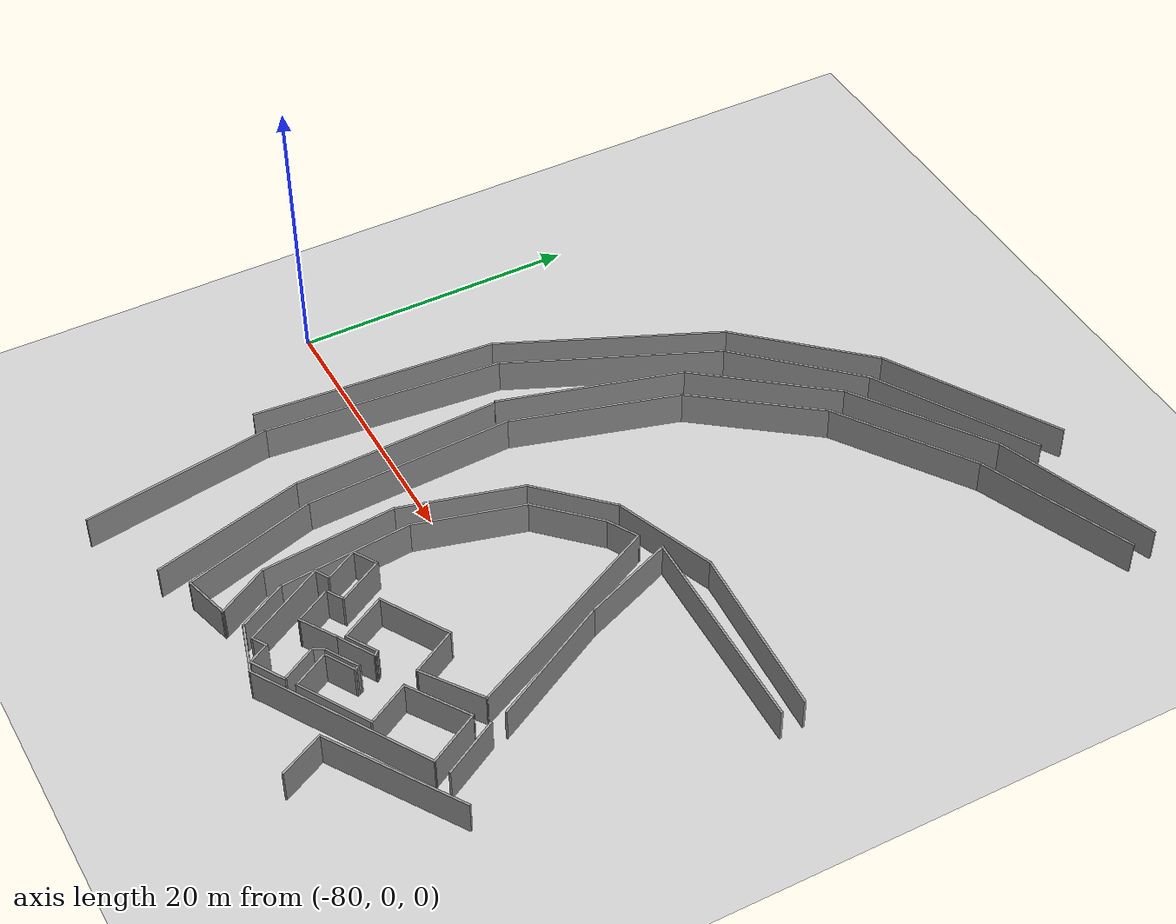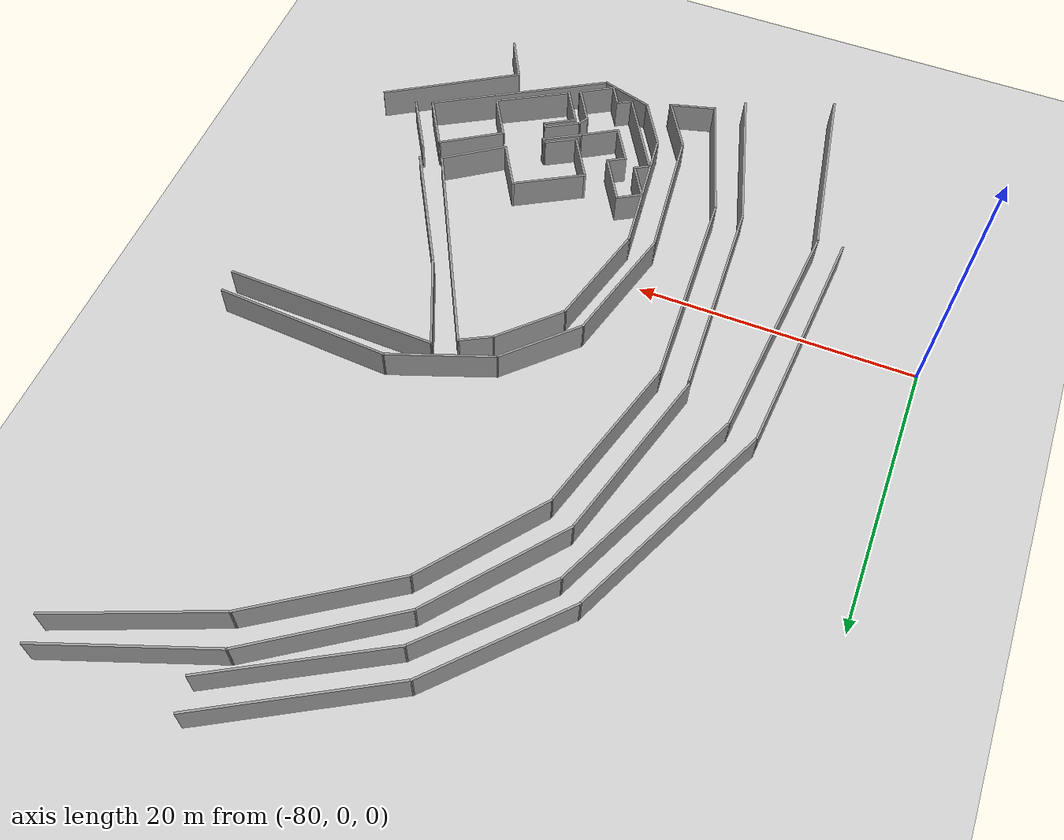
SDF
<sdf version="1.7">
 <world name="default">
  <model name="ground_plane">
   <static>1</static>
   <link name="link">
    <collision name="collision">
     <geometry><plane><normal>0 0 1</normal><size>100 100</size></plane></geometry>
     <surface><friction><ode><mu>100</mu><mu2>50</mu2></ode></friction></surface>
    </collision>
    <visual name="visual">
     <cast_shadows>0</cast_shadows>
     <geometry><plane><normal>0 0 1</normal><size>100 100</size></plane></geometry>
     <material>
      <script><uri>file://media/materials/scripts/gazebo.material</uri><name>Gazebo/Grey</name></script>
     </material>
    </visual>
   </link>
  </model>
  <model name="final_max_v1">
   <pose>-2.52311 0.689104 0 0 -0 0</pose>
   <link name="Wall_101">
    <collision name="Wall_101_Collision">
     <geometry><box><size>17.4551 0.15 2.5</size></box></geometry>
     <pose>0 0 1.25 0 -0 0</pose>
    </collision>
    <visual name="Wall_101_Visual">
     <pose>0 0 1.25 0 -0 0</pose>
     <geometry><box><size>17.4551 0.15 2.5</size></box></geometry>
     <material>
      <script><uri>file://media/materials/scripts/gazebo.material</uri><name>Gazebo/Grey</name></script>
      <ambient>1 1 1 1</ambient>
     </material>
     <meta><layer>0</layer></meta>
    </visual>
    <pose>-69.3611 0.906246 0 0 -0 1.49097</pose>
   </link>
   <link name="Wall_102">
    <collision name="Wall_102_Collision">
     <geometry><box><size>16.5473 0.15 2.5</size></box></geometry>
     <pose>0 0 1.25 0 -0 0</pose>
    </collision>
    <visual name="Wall_102_Visual">
     <pose>0 0 1.25 0 -0 0</pose>
     <geometry><box><size>16.5473 0.15 2.5</size></box></geometry>
     <material>
      <script><uri>file://media/materials/scripts/gazebo.material</uri><name>Gazebo/Grey</name></script>
      <ambient>1 1 1 1</ambient>
     </material>
     <meta><layer>0</layer></meta>
    </visual>
    <pose>-65.3062 17.0076 0 0 -0 1.14788</pose>
   </link>
   <link name="Wall_103">
    <collision name="Wall_103_Collision">
     <geometry><box><size>11.1751 0.15 2.5</size></box></geometry>
     <pose>0 0 1.25 0 -0 0</pose>
    </collision>
    <visual name="Wall_103_Visual">
     <pose>0 0 1.25 0 -0 0</pose>
     <geometry><box><size>11.1751 0.15 2.5</size></box></geometry>
     <material>
      <script><uri>file://media/materials/scripts/gazebo.material</uri><name>Gazebo/Grey</name></script>
      <ambient>1 1 1 1</ambient>
     </material>
     <meta><layer>0</layer></meta>
    </visual>
    <pose>-58.1953 28.5281 0 0 -0 0.823656</pose>
   </link>
   <link name="Wall_104">
    <collision name="Wall_104_Collision">
     <geometry><box><size>13.75 0.15 2.5</size></box></geometry>
     <pose>0 0 1.25 0 -0 0</pose>
    </collision>
    <visual name="Wall_104_Visual">
     <pose>0 0 1.25 0 -0 0</pose>
     <geometry><box><size>13.75 0.15 2.5</size></box></geometry>
     <material>
      <script><uri>file://media/materials/scripts/gazebo.material</uri><name>Gazebo/Grey</name></script>
      <ambient>1 1 1 1</ambient>
     </material>
     <meta><layer>0</layer></meta>
    </visual>
    <pose>-48.5603 35.9723 0 0 -0 0.523599</pose>
   </link>
   <link name="Wall_143">
    <collision name="Wall_143_Collision">
     <geometry><box><size>13.7057 0.15 2.5</size></box></geometry>
     <pose>0 0 1.25 0 -0 0</pose>
    </collision>
    <visual name="Wall_143_Visual">
     <pose>0 0 1.25 0 -0 0</pose>
     <geometry><box><size>13.7057 0.15 2.5</size></box></geometry>
     <material>
      <script><uri>file://media/materials/scripts/gazebo.material</uri><name>Gazebo/Grey</name></script>
      <ambient>1 1 1 1</ambient>
     </material>
     <meta><layer>0</layer></meta>
    </visual>
    <pose>-67.1763 -14.3505 0 0 -0 1.72872</pose>
   </link>
   <link name="Wall_145">
    <collision name="Wall_145_Collision">
     <geometry><box><size>16.9669 0.15 2.5</size></box></geometry>
     <pose>0 0 1.25 0 -0 0</pose>
    </collision>
    <visual name="Wall_145_Visual">
     <pose>0 0 1.25 0 -0 0</pose>
     <geometry><box><size>16.9669 0.15 2.5</size></box></geometry>
     <material>
      <script><uri>file://media/materials/scripts/gazebo.material</uri><name>Gazebo/Grey</name></script>
      <ambient>1 1 1 1</ambient>
     </material>
     <meta><layer>0</layer></meta>
    </visual>
    <pose>-67.4602 0.714958 0 0 -0 1.47766</pose>
   </link>
   <link name="Wall_147">
    <collision name="Wall_147_Collision">
     <geometry><box><size>15.7591 0.15 2.5</size></box></geometry>
     <pose>0 0 1.25 0 -0 0</pose>
    </collision>
    <visual name="Wall_147_Visual">
     <pose>0 0 1.25 0 -0 0</pose>
     <geometry><box><size>15.7591 0.15 2.5</size></box></geometry>
     <material>
      <script><uri>file://media/materials/scripts/gazebo.material</uri><name>Gazebo/Grey</name></script>
      <ambient>1 1 1 1</ambient>
     </material>
     <meta><layer>0</layer></meta>
    </visual>
    <pose>-63.5042 16.217 0 0 -0 1.15197</pose>
   </link>
   <link name="Wall_149">
    <collision name="Wall_149_Collision">
     <geometry><box><size>10.4318 0.15 2.5</size></box></geometry>
     <pose>0 0 1.25 0 -0 0</pose>
    </collision>
    <visual name="Wall_149_Visual">
     <pose>0 0 1.25 0 -0 0</pose>
     <geometry><box><size>10.4318 0.15 2.5</size></box></geometry>
     <material>
      <script><uri>file://media/materials/scripts/gazebo.material</uri><name>Gazebo/Grey</name></script>
      <ambient>1 1 1 1</ambient>
     </material>
     <meta><layer>0</layer></meta>
    </visual>
    <pose>-56.7882 27.073 0 0 -0 0.810709</pose>
   </link>
   <link name="Wall_151">
    <collision name="Wall_151_Collision">
     <geometry><box><size>12.8849 0.15 2.5</size></box></geometry>
     <pose>0 0 1.25 0 -0 0</pose>
    </collision>
    <visual name="Wall_151_Visual">
     <pose>0 0 1.25 0 -0 0</pose>
     <geometry><box><size>12.8849 0.15 2.5</size></box></geometry>
     <material>
      <script><uri>file://media/materials/scripts/gazebo.material</uri><name>Gazebo/Grey</name></script>
      <ambient>1 1 1 1</ambient>
     </material>
     <meta><layer>0</layer></meta>
    </visual>
    <pose>-47.7262 33.973 0 0 -0 0.521834</pose>
   </link>
   <link name="Wall_177">
    <collision name="Wall_177_Collision">
     <geometry><box><size>11.25 0.15 2.5</size></box></geometry>
     <pose>0 0 1.25 0 -0 0</pose>
    </collision>
    <visual name="Wall_177_Visual">
     <pose>0 0 1.25 0 -0 0</pose>
     <geometry><box><size>11.25 0.15 2.5</size></box></geometry>
     <material>
      <script><uri>file://media/materials/scripts/gazebo.material</uri><name>Gazebo/Grey</name></script>
      <ambient>1 1 1 1</ambient>
     </material>
     <meta><layer>0</layer></meta>
    </visual>
    <pose>-61.219 -13.2274 0 0 -0 1.8326</pose>
   </link>
   <link name="Wall_178">
    <collision name="Wall_178_Collision">
     <geometry><box><size>14.9254 0.15 2.5</size></box></geometry>
     <pose>0 0 1.25 0 -0 0</pose>
    </collision>
    <visual name="Wall_178_Visual">
     <pose>0 0 1.25 0 -0 0</pose>
     <geometry><box><size>14.9254 0.15 2.5</size></box></geometry>
     <material>
      <script><uri>file://media/materials/scripts/gazebo.material</uri><name>Gazebo/Grey</name></script>
      <ambient>1 1 1 1</ambient>
     </material>
     <meta><layer>0</layer></meta>
    </visual>
    <pose>-62.967 -0.485436 0 0 -0 1.61298</pose>
   </link>
   <link name="Wall_180">
    <collision name="Wall_180_Collision">
     <geometry><box><size>13.3433 0.15 2.5</size></box></geometry>
     <pose>0 0 1.25 0 -0 0</pose>
    </collision>
    <visual name="Wall_180_Visual">
     <pose>0 0 1.25 0 -0 0</pose>
     <geometry><box><size>13.3433 0.15 2.5</size></box></geometry>
     <material>
      <script><uri>file://media/materials/scripts/gazebo.material</uri><name>Gazebo/Grey</name></script>
      <ambient>1 1 1 1</ambient>
     </material>
     <meta><layer>0</layer></meta>
    </visual>
    <pose>-61.5766 13.5197 0 0 -0 1.29537</pose>
   </link>
   <link name="Wall_181">
    <collision name="Wall_181_Collision">
     <geometry><box><size>11.2134 0.15 2.5</size></box></geometry>
     <pose>0 0 1.25 0 -0 0</pose>
    </collision>
    <visual name="Wall_181_Visual">
     <pose>0 0 1.25 0 -0 0</pose>
     <geometry><box><size>11.2134 0.15 2.5</size></box></geometry>
     <material>
      <script><uri>file://media/materials/scripts/gazebo.material</uri><name>Gazebo/Grey</name></script>
      <ambient>1 1 1 1</ambient>
     </material>
     <meta><layer>0</layer></meta>
    </visual>
    <pose>-56.3326 24.1917 0 0 -0 0.897354</pose>
   </link>
   <link name="Wall_183">
    <collision name="Wall_183_Collision">
     <geometry><box><size>11.4034 0.15 2.5</size></box></geometry>
     <pose>0 0 1.25 0 -0 0</pose>
    </collision>
    <visual name="Wall_183_Visual">
     <pose>0 0 1.25 0 -0 0</pose>
     <geometry><box><size>11.4034 0.15 2.5</size></box></geometry>
     <material>
      <script><uri>file://media/materials/scripts/gazebo.material</uri><name>Gazebo/Grey</name></script>
      <ambient>1 1 1 1</ambient>
     </material>
     <meta><layer>0</layer></meta>
    </visual>
    <pose>-48.2366 31.6897 0 0 -0 0.59934</pose>
   </link>
   <link name="Wall_185">
    <collision name="Wall_185_Collision">
     <geometry><box><size>12.286 0.15 2.5</size></box></geometry>
     <pose>0 0 1.25 0 -0 0</pose>
    </collision>
    <visual name="Wall_185_Visual">
     <pose>0 0 1.25 0 -0 0</pose>
     <geometry><box><size>12.286 0.15 2.5</size></box></geometry>
     <material>
      <script><uri>file://media/materials/scripts/gazebo.material</uri><name>Gazebo/Grey</name></script>
      <ambient>1 1 1 1</ambient>
     </material>
     <meta><layer>0</layer></meta>
    </visual>
    <pose>-37.8866 36.9337 0 0 -0 0.348123</pose>
   </link>
   <link name="Wall_195">
    <collision name="Wall_195_Collision">
     <geometry><box><size>9.95782 0.15 2.5</size></box></geometry>
     <pose>0 0 1.25 0 -0 0</pose>
    </collision>
    <visual name="Wall_195_Visual">
     <pose>0 0 1.25 0 -0 0</pose>
     <geometry><box><size>9.95782 0.15 2.5</size></box></geometry>
     <material>
      <script><uri>file://media/materials/scripts/gazebo.material</uri><name>Gazebo/Grey</name></script>
      <ambient>1 1 1 1</ambient>
     </material>
     <meta><layer>0</layer></meta>
    </visual>
    <pose>-59.1949 -12.5474 0 0 -0 1.86585</pose>
   </link>
   <link name="Wall_196">
    <collision name="Wall_196_Collision">
     <geometry><box><size>15.018 0.15 2.5</size></box></geometry>
     <pose>0 0 1.25 0 -0 0</pose>
    </collision>
    <visual name="Wall_196_Visual">
     <pose>0 0 1.25 0 -0 0</pose>
     <geometry><box><size>15.018 0.15 2.5</size></box></geometry>
     <material>
      <script><uri>file://media/materials/scripts/gazebo.material</uri><name>Gazebo/Grey</name></script>
      <ambient>1 1 1 1</ambient>
     </material>
     <meta><layer>0</layer></meta>
    </visual>
    <pose>-60.9452 -0.428503 0 0 -0 1.61444</pose>
   </link>
   <link name="Wall_198">
    <collision name="Wall_198_Collision">
     <geometry><box><size>12.2392 0.15 2.5</size></box></geometry>
     <pose>0 0 1.25 0 -0 0</pose>
    </collision>
    <visual name="Wall_198_Visual">
     <pose>0 0 1.25 0 -0 0</pose>
     <geometry><box><size>12.2392 0.15 2.5</size></box></geometry>
     <material>
      <script><uri>file://media/materials/scripts/gazebo.material</uri><name>Gazebo/Grey</name></script>
      <ambient>1 1 1 1</ambient>
     </material>
     <meta><layer>0</layer></meta>
    </visual>
    <pose>-59.5904 12.8051 0 0 -0 1.28932</pose>
   </link>
   <link name="Wall_200">
    <collision name="Wall_200_Collision">
     <geometry><box><size>10.2252 0.15 2.5</size></box></geometry>
     <pose>0 0 1.25 0 -0 0</pose>
    </collision>
    <visual name="Wall_200_Visual">
     <pose>0 0 1.25 0 -0 0</pose>
     <geometry><box><size>10.2252 0.15 2.5</size></box></geometry>
     <material>
      <script><uri>file://media/materials/scripts/gazebo.material</uri><name>Gazebo/Grey</name></script>
      <ambient>1 1 1 1</ambient>
     </material>
     <meta><layer>0</layer></meta>
    </visual>
    <pose>-54.8331 22.5996 0 0 -0 0.913407</pose>
   </link>
   <link name="Wall_203">
    <collision name="Wall_203_Collision">
     <geometry><box><size>11.085 0.15 2.5</size></box></geometry>
     <pose>0 0 1.25 0 -0 0</pose>
    </collision>
    <visual name="Wall_203_Visual">
     <pose>0 0 1.25 0 -0 0</pose>
     <geometry><box><size>11.085 0.15 2.5</size></box></geometry>
     <material>
      <script><uri>file://media/materials/scripts/gazebo.material</uri><name>Gazebo/Grey</name></script>
      <ambient>1 1 1 1</ambient>
     </material>
     <meta><layer>0</layer></meta>
    </visual>
    <pose>-47.218 29.6386 0 0 -0 0.592066</pose>
   </link>
   <link name="Wall_205">
    <collision name="Wall_205_Collision">
     <geometry><box><size>11.7846 0.15 2.5</size></box></geometry>
     <pose>0 0 1.25 0 -0 0</pose>
    </collision>
    <visual name="Wall_205_Visual">
     <pose>0 0 1.25 0 -0 0</pose>
     <geometry><box><size>11.7846 0.15 2.5</size></box></geometry>
     <material>
      <script><uri>file://media/materials/scripts/gazebo.material</uri><name>Gazebo/Grey</name></script>
      <ambient>1 1 1 1</ambient>
     </material>
     <meta><layer>0</layer></meta>
    </visual>
    <pose>-37.2991 34.8978 0 0 -0 0.389317</pose>
   </link>
   <link name="Wall_427">
    <collision name="Wall_427_Collision">
     <geometry><box><size>9.82538 0.15 2.5</size></box></geometry>
     <pose>0 0 1.25 0 -0 0</pose>
    </collision>
    <visual name="Wall_427_Visual">
     <pose>0 0 1.25 0 -0 0</pose>
     <geometry><box><size>9.82538 0.15 2.5</size></box></geometry>
     <material>
      <script><uri>file://media/materials/scripts/gazebo.material</uri><name>Gazebo/Grey</name></script>
      <ambient>1 1 1 1</ambient>
     </material>
     <meta><layer>0</layer></meta>
    </visual>
    <pose>-41.1932 -0.194311 0 0 -0 2.07574</pose>
   </link>
   <link name="Wall_428">
    <collision name="Wall_428_Collision">
     <geometry><box><size>7.12478 0.15 2.5</size></box></geometry>
     <pose>0 0 1.25 0 -0 0</pose>
    </collision>
    <visual name="Wall_428_Visual">
     <pose>0 0 1.25 0 -0 0</pose>
     <geometry><box><size>7.12478 0.15 2.5</size></box></geometry>
     <material>
      <script><uri>file://media/materials/scripts/gazebo.material</uri><name>Gazebo/Grey</name></script>
      <ambient>1 1 1 1</ambient>
     </material>
     <meta><layer>0</layer></meta>
    </visual>
    <pose>-44.8559 7.26656 0 0 -0 1.95975</pose>
   </link>
   <link name="Wall_429">
    <collision name="Wall_429_Collision">
     <geometry><box><size>15.4372 0.15 2.5</size></box></geometry>
     <pose>0 0 1.25 0 -0 0</pose>
    </collision>
    <visual name="Wall_429_Visual">
     <pose>0 0 1.25 0 -0 0</pose>
     <geometry><box><size>15.4372 0.15 2.5</size></box></geometry>
     <material>
      <script><uri>file://media/materials/scripts/gazebo.material</uri><name>Gazebo/Grey</name></script>
      <ambient>1 1 1 1</ambient>
     </material>
     <meta><layer>0</layer></meta>
    </visual>
    <pose>-38.5372 10.3021 0 0 -0 -0.025039</pose>
   </link>
   <link name="Wall_465">
    <collision name="Wall_465_Collision">
     <geometry><box><size>4.5 0.15 2.5</size></box></geometry>
     <pose>0 0 1.25 0 -0 0</pose>
    </collision>
    <visual name="Wall_465_Visual">
     <pose>0 0 1.25 0 -0 0</pose>
     <geometry><box><size>4.5 0.15 2.5</size></box></geometry>
     <material>
      <script><uri>file://media/materials/scripts/gazebo.material</uri><name>Gazebo/Grey</name></script>
      <ambient>1 1 1 1</ambient>
     </material>
     <meta><layer>0</layer></meta>
    </visual>
    <pose>-37.4503 -7.52646 0 0 -0 -1.0472</pose>
   </link>
   <link name="Wall_469">
    <collision name="Wall_469_Collision">
     <geometry><box><size>4.25 0.15 2.5</size></box></geometry>
     <pose>0 0 1.25 0 -0 0</pose>
    </collision>
    <visual name="Wall_469_Visual">
     <pose>0 0 1.25 0 -0 0</pose>
     <geometry><box><size>4.25 0.15 2.5</size></box></geometry>
     <material>
      <script><uri>file://media/materials/scripts/gazebo.material</uri><name>Gazebo/Grey</name></script>
      <ambient>1 1 1 1</ambient>
     </material>
     <meta><layer>0</layer></meta>
    </visual>
    <pose>-38.5562 -8.09874 0 0 -0 -1.0472</pose>
   </link>
   <link name="Wall_471">
    <collision name="Wall_471_Collision">
     <geometry><box><size>3.5 0.15 2.5</size></box></geometry>
     <pose>0 0 1.25 0 -0 0</pose>
    </collision>
    <visual name="Wall_471_Visual">
     <pose>0 0 1.25 0 -0 0</pose>
     <geometry><box><size>3.5 0.15 2.5</size></box></geometry>
     <material>
      <script><uri>file://media/materials/scripts/gazebo.material</uri><name>Gazebo/Grey</name></script>
      <ambient>1 1 1 1</ambient>
     </material>
     <meta><layer>0</layer></meta>
    </visual>
    <pose>-56.1509 -16.8059 0 0 -0 0.261799</pose>
   </link>
   <link name="Wall_585">
    <collision name="Wall_585_Collision">
     <geometry><box><size>3.57821 0.15 2.5</size></box></geometry>
     <pose>0 0 1.25 0 -0 0</pose>
    </collision>
    <visual name="Wall_585_Visual">
     <pose>0 0 1.25 0 -0 0</pose>
     <geometry><box><size>3.57821 0.15 2.5</size></box></geometry>
     <material>
      <script><uri>file://media/materials/scripts/gazebo.material</uri><name>Gazebo/Grey</name></script>
      <ambient>1 1 1 1</ambient>
     </material>
     <meta><layer>0</layer></meta>
    </visual>
    <pose>-41.7856 -16.5735 0 0 -0 2.04971</pose>
   </link>
   <link name="Wall_586">
    <collision name="Wall_586_Collision">
     <geometry><box><size>10.6377 0.15 2.5</size></box></geometry>
     <pose>0 0 1.25 0 -0 0</pose>
    </collision>
    <visual name="Wall_586_Visual">
     <pose>0 0 1.25 0 -0 0</pose>
     <geometry><box><size>10.6377 0.15 2.5</size></box></geometry>
     <material>
      <script><uri>file://media/materials/scripts/gazebo.material</uri><name>Gazebo/Grey</name></script>
      <ambient>1 1 1 1</ambient>
     </material>
     <meta><layer>0</layer></meta>
    </visual>
    <pose>-38.1287 -12.273 0 0 -0 0.558599</pose>
   </link>
   <link name="Wall_622">
    <collision name="Wall_622_Collision">
     <geometry><box><size>4.25 0.15 2.5</size></box></geometry>
     <pose>0 0 1.25 0 -0 0</pose>
    </collision>
    <visual name="Wall_622_Visual">
     <pose>0 0 1.25 0 -0 0</pose>
     <geometry><box><size>4.25 0.15 2.5</size></box></geometry>
     <material>
      <script><uri>file://media/materials/scripts/gazebo.material</uri><name>Gazebo/Grey</name></script>
      <ambient>1 1 1 1</ambient>
     </material>
     <meta><layer>0</layer></meta>
    </visual>
    <pose>-55.558 -14.597 0 0 -0 2.0944</pose>
   </link>
   <link name="Wall_623">
    <collision name="Wall_623_Collision">
     <geometry><box><size>9.84854 0.15 2.5</size></box></geometry>
     <pose>0 0 1.25 0 -0 0</pose>
    </collision>
    <visual name="Wall_623_Visual">
     <pose>0 0 1.25 0 -0 0</pose>
     <geometry><box><size>9.84854 0.15 2.5</size></box></geometry>
     <material>
      <script><uri>file://media/materials/scripts/gazebo.material</uri><name>Gazebo/Grey</name></script>
      <ambient>1 1 1 1</ambient>
     </material>
     <meta><layer>0</layer></meta>
    </visual>
    <pose>-57.0579 -7.99572 0 0 -0 1.66889</pose>
   </link>
   <link name="Wall_625">
    <collision name="Wall_625_Collision">
     <geometry><box><size>9 0.15 2.5</size></box></geometry>
     <pose>0 0 1.25 0 -0 0</pose>
    </collision>
    <visual name="Wall_625_Visual">
     <pose>0 0 1.25 0 -0 0</pose>
     <geometry><box><size>9 0.15 2.5</size></box></geometry>
     <material>
      <script><uri>file://media/materials/scripts/gazebo.material</uri><name>Gazebo/Grey</name></script>
      <ambient>1 1 1 1</ambient>
     </material>
     <meta><layer>0</layer></meta>
    </visual>
    <pose>-56.3875 1.10446 0 0 -0 1.309</pose>
   </link>
   <link name="Wall_626">
    <collision name="Wall_626_Collision">
     <geometry><box><size>6.5 0.15 2.5</size></box></geometry>
     <pose>0 0 1.25 0 -0 0</pose>
    </collision>
    <visual name="Wall_626_Visual">
     <pose>0 0 1.25 0 -0 0</pose>
     <geometry><box><size>6.5 0.15 2.5</size></box></geometry>
     <material>
      <script><uri>file://media/materials/scripts/gazebo.material</uri><name>Gazebo/Grey</name></script>
      <ambient>1 1 1 1</ambient>
     </material>
     <meta><layer>0</layer></meta>
    </visual>
    <pose>-52.9972 7.62375 0 0 -0 0.785398</pose>
   </link>
   <link name="Wall_630">
    <collision name="Wall_630_Collision">
     <geometry><box><size>7.83382 0.15 2.5</size></box></geometry>
     <pose>0 0 1.25 0 -0 0</pose>
    </collision>
    <visual name="Wall_630_Visual">
     <pose>0 0 1.25 0 -0 0</pose>
     <geometry><box><size>7.83382 0.15 2.5</size></box></geometry>
     <material>
      <script><uri>file://media/materials/scripts/gazebo.material</uri><name>Gazebo/Grey</name></script>
      <ambient>1 1 1 1</ambient>
     </material>
     <meta><layer>0</layer></meta>
    </visual>
    <pose>-47.1431 11.186 0 0 -0 0.349939</pose>
   </link>
   <link name="Wall_631">
    <collision name="Wall_631_Collision">
     <geometry><box><size>12.7173 0.15 2.5</size></box></geometry>
     <pose>0 0 1.25 0 -0 0</pose>
    </collision>
    <visual name="Wall_631_Visual">
     <pose>0 0 1.25 0 -0 0</pose>
     <geometry><box><size>12.7173 0.15 2.5</size></box></geometry>
     <material>
      <script><uri>file://media/materials/scripts/gazebo.material</uri><name>Gazebo/Grey</name></script>
      <ambient>1 1 1 1</ambient>
     </material>
     <meta><layer>0</layer></meta>
    </visual>
    <pose>-37.2604 12.1472 0 0 -0 -0.056677</pose>
   </link>
   <link name="Wall_633">
    <collision name="Wall_633_Collision">
     <geometry><box><size>4 0.15 2.5</size></box></geometry>
     <pose>0 0 1.25 0 -0 0</pose>
    </collision>
    <visual name="Wall_633_Visual">
     <pose>0 0 1.25 0 -0 0</pose>
     <geometry><box><size>4 0.15 2.5</size></box></geometry>
     <material>
      <script><uri>file://media/materials/scripts/gazebo.material</uri><name>Gazebo/Grey</name></script>
      <ambient>1 1 1 1</ambient>
     </material>
     <meta><layer>0</layer></meta>
    </visual>
    <pose>-53.8105 -14.0024 0 0 -0 2.0944</pose>
   </link>
   <link name="Wall_634">
    <collision name="Wall_634_Collision">
     <geometry><box><size>9.63115 0.15 2.5</size></box></geometry>
     <pose>0 0 1.25 0 -0 0</pose>
    </collision>
    <visual name="Wall_634_Visual">
     <pose>0 0 1.25 0 -0 0</pose>
     <geometry><box><size>9.63115 0.15 2.5</size></box></geometry>
     <material>
      <script><uri>file://media/materials/scripts/gazebo.material</uri><name>Gazebo/Grey</name></script>
      <ambient>1 1 1 1</ambient>
     </material>
     <meta><layer>0</layer></meta>
    </visual>
    <pose>-55.2461 -7.61841 0 0 -0 1.67077</pose>
   </link>
   <link name="Wall_636">
    <collision name="Wall_636_Collision">
     <geometry><box><size>8 0.15 2.5</size></box></geometry>
     <pose>0 0 1.25 0 -0 0</pose>
    </collision>
    <visual name="Wall_636_Visual">
     <pose>0 0 1.25 0 -0 0</pose>
     <geometry><box><size>8 0.15 2.5</size></box></geometry>
     <material>
      <script><uri>file://media/materials/scripts/gazebo.material</uri><name>Gazebo/Grey</name></script>
      <ambient>1 1 1 1</ambient>
     </material>
     <meta><layer>0</layer></meta>
    </visual>
    <pose>-54.7034 0.889753 0 0 -0 1.309</pose>
   </link>
   <link name="Wall_637">
    <collision name="Wall_637_Collision">
     <geometry><box><size>5.5 0.15 2.5</size></box></geometry>
     <pose>0 0 1.25 0 -0 0</pose>
    </collision>
    <visual name="Wall_637_Visual">
     <pose>0 0 1.25 0 -0 0</pose>
     <geometry><box><size>5.5 0.15 2.5</size></box></geometry>
     <material>
      <script><uri>file://media/materials/scripts/gazebo.material</uri><name>Gazebo/Grey</name></script>
      <ambient>1 1 1 1</ambient>
     </material>
     <meta><layer>0</layer></meta>
    </visual>
    <pose>-51.796 6.57252 0 0 -0 0.785398</pose>
   </link>
   <link name="Wall_638">
    <collision name="Wall_638_Collision">
     <geometry><box><size>2.56617 0.15 2.5</size></box></geometry>
     <pose>0 0 1.25 0 -0 0</pose>
    </collision>
    <visual name="Wall_638_Visual">
     <pose>0 0 1.25 0 -0 0</pose>
     <geometry><box><size>2.56617 0.15 2.5</size></box></geometry>
     <material>
      <script><uri>file://media/materials/scripts/gazebo.material</uri><name>Gazebo/Grey</name></script>
      <ambient>1 1 1 1</ambient>
     </material>
     <meta><layer>0</layer></meta>
    </visual>
    <pose>-48.8419 9.03891 0 0 -0 0.495945</pose>
   </link>
   <link name="Wall_639">
    <collision name="Wall_639_Collision">
     <geometry><box><size>16.52 0.15 2.5</size></box></geometry>
     <pose>0 0 1.25 0 -0 0</pose>
    </collision>
    <visual name="Wall_639_Visual">
     <pose>0 0 1.25 0 -0 0</pose>
     <geometry><box><size>16.52 0.15 2.5</size></box></geometry>
     <material>
      <script><uri>file://media/materials/scripts/gazebo.material</uri><name>Gazebo/Grey</name></script>
      <ambient>1 1 1 1</ambient>
     </material>
     <meta><layer>0</layer></meta>
    </visual>
    <pose>-44.0786 2.3132 0 0 -0 -1.10163</pose>
   </link>
   <link name="Wall_641">
    <collision name="Wall_641_Collision">
     <geometry><box><size>3.96544 0.15 2.5</size></box></geometry>
     <pose>0 0 1.25 0 -0 0</pose>
    </collision>
    <visual name="Wall_641_Visual">
     <pose>0 0 1.25 0 -0 0</pose>
     <geometry><box><size>3.96544 0.15 2.5</size></box></geometry>
     <material>
      <script><uri>file://media/materials/scripts/gazebo.material</uri><name>Gazebo/Grey</name></script>
      <ambient>1 1 1 1</ambient>
     </material>
     <meta><layer>0</layer></meta>
    </visual>
    <pose>-51.0202 -16.216 0 0 -0 -0.290546</pose>
   </link>
   <link name="Wall_642">
    <collision name="Wall_642_Collision">
     <geometry><box><size>13.6938 0.15 2.5</size></box></geometry>
     <pose>0 0 1.25 0 -0 0</pose>
    </collision>
    <visual name="Wall_642_Visual">
     <pose>0 0 1.25 0 -0 0</pose>
     <geometry><box><size>13.6938 0.15 2.5</size></box></geometry>
     <material>
      <script><uri>file://media/materials/scripts/gazebo.material</uri><name>Gazebo/Grey</name></script>
      <ambient>1 1 1 1</ambient>
     </material>
     <meta><layer>0</layer></meta>
    </visual>
    <pose>-43.3618 -13.3183 0 0 -0 0.533565</pose>
   </link>
   <link name="Wall_655">
    <collision name="Wall_655_Collision">
     <geometry><box><size>4.99892 0.15 2.5</size></box></geometry>
     <pose>0 0 1.25 0 -0 0</pose>
    </collision>
    <visual name="Wall_655_Visual">
     <pose>0 0 1.25 0 -0 0</pose>
     <geometry><box><size>4.99892 0.15 2.5</size></box></geometry>
     <material>
      <script><uri>file://media/materials/scripts/gazebo.material</uri><name>Gazebo/Grey</name></script>
      <ambient>1 1 1 1</ambient>
     </material>
     <meta><layer>0</layer></meta>
    </visual>
    <pose>-42.3685 -6.37133 0 0 -0 0.607511</pose>
   </link>
   <link name="Wall_657">
    <collision name="Wall_657_Collision">
     <geometry><box><size>5.03237 0.15 2.5</size></box></geometry>
     <pose>0 0 1.25 0 -0 0</pose>
    </collision>
    <visual name="Wall_657_Visual">
     <pose>0 0 1.25 0 -0 0</pose>
     <geometry><box><size>5.03237 0.15 2.5</size></box></geometry>
     <material>
      <script><uri>file://media/materials/scripts/gazebo.material</uri><name>Gazebo/Grey</name></script>
      <ambient>1 1 1 1</ambient>
     </material>
     <meta><layer>0</layer></meta>
    </visual>
    <pose>-41.6338 -7.64491 0 0 -0 0.572037</pose>
   </link>
   <link name="Wall_659">
    <collision name="Wall_659_Collision">
     <geometry><box><size>3.75 0.15 2.5</size></box></geometry>
     <pose>0 0 1.25 0 -0 0</pose>
    </collision>
    <visual name="Wall_659_Visual">
     <pose>0 0 1.25 0 -0 0</pose>
     <geometry><box><size>3.75 0.15 2.5</size></box></geometry>
     <material>
      <script><uri>file://media/materials/scripts/gazebo.material</uri><name>Gazebo/Grey</name></script>
      <ambient>1 1 1 1</ambient>
     </material>
     <meta><layer>0</layer></meta>
    </visual>
    <pose>-45.2592 -6.19643 0 0 -0 2.0944</pose>
   </link>
   <link name="Wall_660">
    <collision name="Wall_660_Collision">
     <geometry><box><size>5.5 0.15 2.5</size></box></geometry>
     <pose>0 0 1.25 0 -0 0</pose>
    </collision>
    <visual name="Wall_660_Visual">
     <pose>0 0 1.25 0 -0 0</pose>
     <geometry><box><size>5.5 0.15 2.5</size></box></geometry>
     <material>
      <script><uri>file://media/materials/scripts/gazebo.material</uri><name>Gazebo/Grey</name></script>
      <ambient>1 1 1 1</ambient>
     </material>
     <meta><layer>0</layer></meta>
    </visual>
    <pose>-48.4758 -5.97509 0 0 -0 -2.61799</pose>
   </link>
   <link name="Wall_661">
    <collision name="Wall_661_Collision">
     <geometry><box><size>3.75 0.15 2.5</size></box></geometry>
     <pose>0 0 1.25 0 -0 0</pose>
    </collision>
    <visual name="Wall_661_Visual">
     <pose>0 0 1.25 0 -0 0</pose>
     <geometry><box><size>3.75 0.15 2.5</size></box></geometry>
     <material>
      <script><uri>file://media/materials/scripts/gazebo.material</uri><name>Gazebo/Grey</name></script>
      <ambient>1 1 1 1</ambient>
     </material>
     <meta><layer>0</layer></meta>
    </visual>
    <pose>-49.8924 -8.87143 0 0 -0 -1.0472</pose>
   </link>
   <link name="Wall_662">
    <collision name="Wall_662_Collision">
     <geometry><box><size>2.5 0.15 2.5</size></box></geometry>
     <pose>0 0 1.25 0 -0 0</pose>
    </collision>
    <visual name="Wall_662_Visual">
     <pose>0 0 1.25 0 -0 0</pose>
     <geometry><box><size>2.5 0.15 2.5</size></box></geometry>
     <material>
      <script><uri>file://media/materials/scripts/gazebo.material</uri><name>Gazebo/Grey</name></script>
      <ambient>1 1 1 1</ambient>
     </material>
     <meta><layer>0</layer></meta>
    </visual>
    <pose>-47.9748 -9.84278 0 0 -0 0.523599</pose>
   </link>
   <link name="Wall_663">
    <collision name="Wall_663_Collision">
     <geometry><box><size>0.5 0.15 2.5</size></box></geometry>
     <pose>0 0 1.25 0 -0 0</pose>
    </collision>
    <visual name="Wall_663_Visual">
     <pose>0 0 1.25 0 -0 0</pose>
     <geometry><box><size>0.5 0.15 2.5</size></box></geometry>
     <material>
      <script><uri>file://media/materials/scripts/gazebo.material</uri><name>Gazebo/Grey</name></script>
      <ambient>1 1 1 1</ambient>
     </material>
     <meta><layer>0</layer></meta>
    </visual>
    <pose>-46.8335 -9.37902 0 0 -0 -0.785398</pose>
   </link>
   <link name="Wall_664">
    <collision name="Wall_664_Collision">
     <geometry><box><size>3 0.15 2.5</size></box></geometry>
     <pose>0 0 1.25 0 -0 0</pose>
    </collision>
    <visual name="Wall_664_Visual">
     <pose>0 0 1.25 0 -0 0</pose>
     <geometry><box><size>3 0.15 2.5</size></box></geometry>
     <material>
      <script><uri>file://media/materials/scripts/gazebo.material</uri><name>Gazebo/Grey</name></script>
      <ambient>1 1 1 1</ambient>
     </material>
     <meta><layer>0</layer></meta>
    </visual>
    <pose>-47.9439 -10.2153 0 0 -0 -2.61799</pose>
   </link>
   <link name="Wall_666">
    <collision name="Wall_666_Collision">
     <geometry><box><size>3.5 0.15 2.5</size></box></geometry>
     <pose>0 0 1.25 0 -0 0</pose>
    </collision>
    <visual name="Wall_666_Visual">
     <pose>0 0 1.25 0 -0 0</pose>
     <geometry><box><size>3.5 0.15 2.5</size></box></geometry>
     <material>
      <script><uri>file://media/materials/scripts/gazebo.material</uri><name>Gazebo/Grey</name></script>
      <ambient>1 1 1 1</ambient>
     </material>
     <meta><layer>0</layer></meta>
    </visual>
    <pose>-42.8488 -10.417 0 0 -0 -1.0472</pose>
   </link>
   <link name="Wall_667">
    <collision name="Wall_667_Collision">
     <geometry><box><size>5.75 0.15 2.5</size></box></geometry>
     <pose>0 0 1.25 0 -0 0</pose>
    </collision>
    <visual name="Wall_667_Visual">
     <pose>0 0 1.25 0 -0 0</pose>
     <geometry><box><size>5.75 0.15 2.5</size></box></geometry>
     <material>
      <script><uri>file://media/materials/scripts/gazebo.material</uri><name>Gazebo/Grey</name></script>
      <ambient>1 1 1 1</ambient>
     </material>
     <meta><layer>0</layer></meta>
    </visual>
    <pose>-44.4362 -13.2676 0 0 -0 -2.61799</pose>
   </link>
   <link name="Wall_668">
    <collision name="Wall_668_Collision">
     <geometry><box><size>3 0.15 2.5</size></box></geometry>
     <pose>0 0 1.25 0 -0 0</pose>
    </collision>
    <visual name="Wall_668_Visual">
     <pose>0 0 1.25 0 -0 0</pose>
     <geometry><box><size>3 0.15 2.5</size></box></geometry>
     <material>
      <script><uri>file://media/materials/scripts/gazebo.material</uri><name>Gazebo/Grey</name></script>
      <ambient>1 1 1 1</ambient>
     </material>
     <meta><layer>0</layer></meta>
    </visual>
    <pose>-47.5736 -13.4335 0 0 -0 2.0944</pose>
   </link>
   <link name="Wall_669">
    <collision name="Wall_669_Collision">
     <geometry><box><size>2.5 0.15 2.5</size></box></geometry>
     <pose>0 0 1.25 0 -0 0</pose>
    </collision>
    <visual name="Wall_669_Visual">
     <pose>0 0 1.25 0 -0 0</pose>
     <geometry><box><size>2.5 0.15 2.5</size></box></geometry>
     <material>
      <script><uri>file://media/materials/scripts/gazebo.material</uri><name>Gazebo/Grey</name></script>
      <ambient>1 1 1 1</ambient>
     </material>
     <meta><layer>0</layer></meta>
    </visual>
    <pose>-47.2685 -11.6119 0 0 -0 0.523599</pose>
   </link>
   <link name="Wall_670">
    <collision name="Wall_670_Collision">
     <geometry><box><size>0.5 0.15 2.5</size></box></geometry>
     <pose>0 0 1.25 0 -0 0</pose>
    </collision>
    <visual name="Wall_670_Visual">
     <pose>0 0 1.25 0 -0 0</pose>
     <geometry><box><size>0.5 0.15 2.5</size></box></geometry>
     <material>
      <script><uri>file://media/materials/scripts/gazebo.material</uri><name>Gazebo/Grey</name></script>
      <ambient>1 1 1 1</ambient>
     </material>
     <meta><layer>0</layer></meta>
    </visual>
    <pose>-46.3384 -10.8729 0 0 -0 2.0944</pose>
   </link>
   <link name="Wall_671">
    <collision name="Wall_671_Collision">
     <geometry><box><size>2.75 0.15 2.5</size></box></geometry>
     <pose>0 0 1.25 0 -0 0</pose>
    </collision>
    <visual name="Wall_671_Visual">
     <pose>0 0 1.25 0 -0 0</pose>
     <geometry><box><size>2.75 0.15 2.5</size></box></geometry>
     <material>
      <script><uri>file://media/materials/scripts/gazebo.material</uri><name>Gazebo/Grey</name></script>
      <ambient>1 1 1 1</ambient>
     </material>
     <meta><layer>0</layer></meta>
    </visual>
    <pose>-47.5517 -11.3713 0 0 -0 -2.61799</pose>
   </link>
   <link name="Wall_673">
    <collision name="Wall_673_Collision">
     <geometry><box><size>1.25 0.15 2.5</size></box></geometry>
     <pose>0 0 1.25 0 -0 0</pose>
    </collision>
    <visual name="Wall_673_Visual">
     <pose>0 0 1.25 0 -0 0</pose>
     <geometry><box><size>1.25 0.15 2.5</size></box></geometry>
     <material>
      <script><uri>file://media/materials/scripts/gazebo.material</uri><name>Gazebo/Grey</name></script>
      <ambient>1 1 1 1</ambient>
     </material>
     <meta><layer>0</layer></meta>
    </visual>
    <pose>-54.458 -9.61498 0 0 -0 0.523599</pose>
   </link>
   <link name="Wall_674">
    <collision name="Wall_674_Collision">
     <geometry><box><size>2.75 0.15 2.5</size></box></geometry>
     <pose>0 0 1.25 0 -0 0</pose>
    </collision>
    <visual name="Wall_674_Visual">
     <pose>0 0 1.25 0 -0 0</pose>
     <geometry><box><size>2.75 0.15 2.5</size></box></geometry>
     <material>
      <script><uri>file://media/materials/scripts/gazebo.material</uri><name>Gazebo/Grey</name></script>
      <ambient>1 1 1 1</ambient>
     </material>
     <meta><layer>0</layer></meta>
    </visual>
    <pose>-54.6316 -8.21414 0 0 -0 2.0944</pose>
   </link>
   <link name="Wall_675">
    <collision name="Wall_675_Collision">
     <geometry><box><size>2 0.15 2.5</size></box></geometry>
     <pose>0 0 1.25 0 -0 0</pose>
    </collision>
    <visual name="Wall_675_Visual">
     <pose>0 0 1.25 0 -0 0</pose>
     <geometry><box><size>2 0.15 2.5</size></box></geometry>
     <material>
      <script><uri>file://media/materials/scripts/gazebo.material</uri><name>Gazebo/Grey</name></script>
      <ambient>1 1 1 1</ambient>
     </material>
     <meta><layer>0</layer></meta>
    </visual>
    <pose>-54.4806 -6.62581 0 0 -0 0.523599</pose>
   </link>
   <link name="Wall_676">
    <collision name="Wall_676_Collision">
     <geometry><box><size>3.75 0.15 2.5</size></box></geometry>
     <pose>0 0 1.25 0 -0 0</pose>
    </collision>
    <visual name="Wall_676_Visual">
     <pose>0 0 1.25 0 -0 0</pose>
     <geometry><box><size>3.75 0.15 2.5</size></box></geometry>
     <material>
      <script><uri>file://media/materials/scripts/gazebo.material</uri><name>Gazebo/Grey</name></script>
      <ambient>1 1 1 1</ambient>
     </material>
     <meta><layer>0</layer></meta>
    </visual>
    <pose>-52.7795 -7.72216 0 0 -0 -1.0472</pose>
   </link>
   <link name="Wall_677">
    <collision name="Wall_677_Collision">
     <geometry><box><size>1.5 0.15 2.5</size></box></geometry>
     <pose>0 0 1.25 0 -0 0</pose>
    </collision>
    <visual name="Wall_677_Visual">
     <pose>0 0 1.25 0 -0 0</pose>
     <geometry><box><size>1.5 0.15 2.5</size></box></geometry>
     <material>
      <script><uri>file://media/materials/scripts/gazebo.material</uri><name>Gazebo/Grey</name></script>
      <ambient>1 1 1 1</ambient>
     </material>
     <meta><layer>0</layer></meta>
    </visual>
    <pose>-52.4641 -9.6185 0 0 -0 -2.61799</pose>
   </link>
   <link name="Wall_678">
    <collision name="Wall_678_Collision">
     <geometry><box><size>3 0.15 2.5</size></box></geometry>
     <pose>0 0 1.25 0 -0 0</pose>
    </collision>
    <visual name="Wall_678_Visual">
     <pose>0 0 1.25 0 -0 0</pose>
     <geometry><box><size>3 0.15 2.5</size></box></geometry>
     <material>
      <script><uri>file://media/materials/scripts/gazebo.material</uri><name>Gazebo/Grey</name></script>
      <ambient>1 1 1 1</ambient>
     </material>
     <meta><layer>0</layer></meta>
    </visual>
    <pose>-52.3361 -11.1901 0 0 -0 -1.0472</pose>
   </link>
   <link name="Wall_679">
    <collision name="Wall_679_Collision">
     <geometry><box><size>3.01715 0.15 2.5</size></box></geometry>
     <pose>0 0 1.25 0 -0 0</pose>
    </collision>
    <visual name="Wall_679_Visual">
     <pose>0 0 1.25 0 -0 0</pose>
     <geometry><box><size>3.01715 0.15 2.5</size></box></geometry>
     <material>
      <script><uri>file://media/materials/scripts/gazebo.material</uri><name>Gazebo/Grey</name></script>
      <ambient>1 1 1 1</ambient>
     </material>
     <meta><layer>0</layer></meta>
    </visual>
    <pose>-50.4008 -11.676 0 0 -0 0.549094</pose>
   </link>
   <link name="Wall_681">
    <collision name="Wall_681_Collision">
     <geometry><box><size>6.75 0.15 2.5</size></box></geometry>
     <pose>0 0 1.25 0 -0 0</pose>
    </collision>
    <visual name="Wall_681_Visual">
     <pose>0 0 1.25 0 -0 0</pose>
     <geometry><box><size>6.75 0.15 2.5</size></box></geometry>
     <material>
      <script><uri>file://media/materials/scripts/gazebo.material</uri><name>Gazebo/Grey</name></script>
      <ambient>1 1 1 1</ambient>
     </material>
     <meta><layer>0</layer></meta>
    </visual>
    <pose>-53.2843 -12.7479 0 0 -0 -1.0472</pose>
   </link>
   <link name="Wall_682">
    <collision name="Wall_682_Collision">
     <geometry><box><size>1.25 0.15 2.5</size></box></geometry>
     <pose>0 0 1.25 0 -0 0</pose>
    </collision>
    <visual name="Wall_682_Visual">
     <pose>0 0 1.25 0 -0 0</pose>
     <geometry><box><size>1.25 0.15 2.5</size></box></geometry>
     <material>
      <script><uri>file://media/materials/scripts/gazebo.material</uri><name>Gazebo/Grey</name></script>
      <ambient>1 1 1 1</ambient>
     </material>
     <meta><layer>0</layer></meta>
    </visual>
    <pose>-51.158 -15.3307 0 0 -0 0.523599</pose>
   </link>
   <link name="Wall_683">
    <collision name="Wall_683_Collision">
     <geometry><box><size>1.75 0.15 2.5</size></box></geometry>
     <pose>0 0 1.25 0 -0 0</pose>
    </collision>
    <visual name="Wall_683_Visual">
     <pose>0 0 1.25 0 -0 0</pose>
     <geometry><box><size>1.75 0.15 2.5</size></box></geometry>
     <material>
      <script><uri>file://media/materials/scripts/gazebo.material</uri><name>Gazebo/Grey</name></script>
      <ambient>1 1 1 1</ambient>
     </material>
     <meta><layer>0</layer></meta>
    </visual>
    <pose>-50.2816 -15.7486 0 0 -0 -1.0472</pose>
   </link>
   <link name="Wall_684">
    <collision name="Wall_684_Collision">
     <geometry><box><size>2.75 0.15 2.5</size></box></geometry>
     <pose>0 0 1.25 0 -0 0</pose>
    </collision>
    <visual name="Wall_684_Visual">
     <pose>0 0 1.25 0 -0 0</pose>
     <geometry><box><size>2.75 0.15 2.5</size></box></geometry>
     <material>
      <script><uri>file://media/materials/scripts/gazebo.material</uri><name>Gazebo/Grey</name></script>
      <ambient>1 1 1 1</ambient>
     </material>
     <meta><layer>0</layer></meta>
    </visual>
    <pose>-48.7558 -15.7914 0 0 -0 0.523599</pose>
   </link>
   <link name="Wall_685">
    <collision name="Wall_685_Collision">
     <geometry><box><size>3 0.15 2.5</size></box></geometry>
     <pose>0 0 1.25 0 -0 0</pose>
    </collision>
    <visual name="Wall_685_Visual">
     <pose>0 0 1.25 0 -0 0</pose>
     <geometry><box><size>3 0.15 2.5</size></box></geometry>
     <material>
      <script><uri>file://media/materials/scripts/gazebo.material</uri><name>Gazebo/Grey</name></script>
      <ambient>1 1 1 1</ambient>
     </material>
     <meta><layer>0</layer></meta>
    </visual>
    <pose>-48.3425 -13.9073 0 0 -0 2.0944</pose>
   </link>
   <link name="Wall_686">
    <collision name="Wall_686_Collision">
     <geometry><box><size>0.903239 0.15 2.5</size></box></geometry>
     <pose>0 0 1.25 0 -0 0</pose>
    </collision>
    <visual name="Wall_686_Visual">
     <pose>0 0 1.25 0 -0 0</pose>
     <geometry><box><size>0.903239 0.15 2.5</size></box></geometry>
     <material>
      <script><uri>file://media/materials/scripts/gazebo.material</uri><name>Gazebo/Grey</name></script>
      <ambient>1 1 1 1</ambient>
     </material>
     <meta><layer>0</layer></meta>
    </visual>
    <pose>-48.8663 -12.3473 0 0 -0 1.046</pose>
   </link>
   <static>1</static>
  </model>
 </world>
</sdf>
